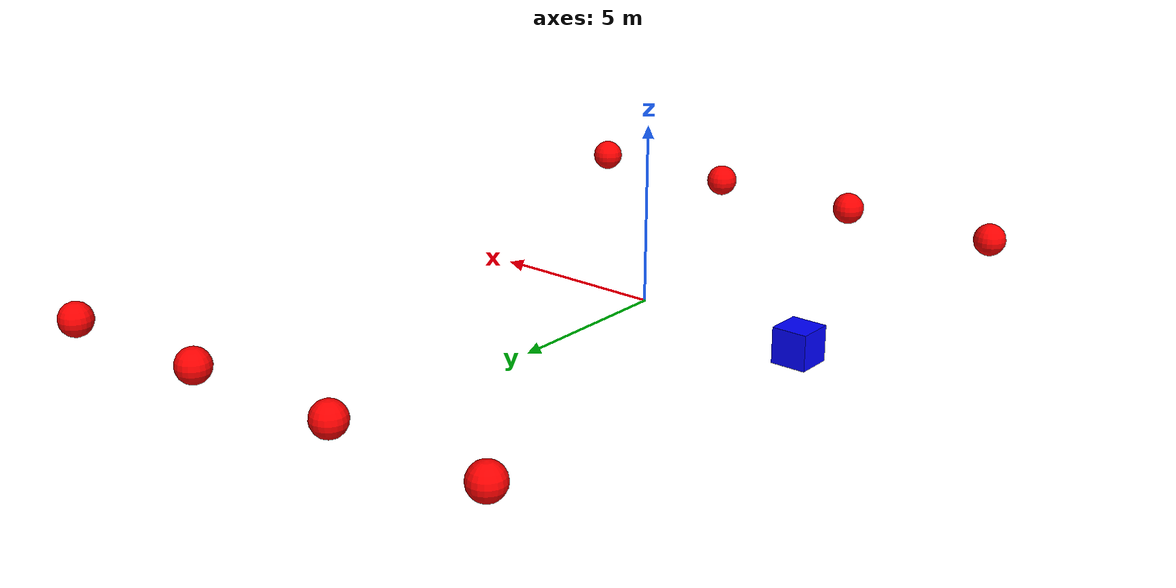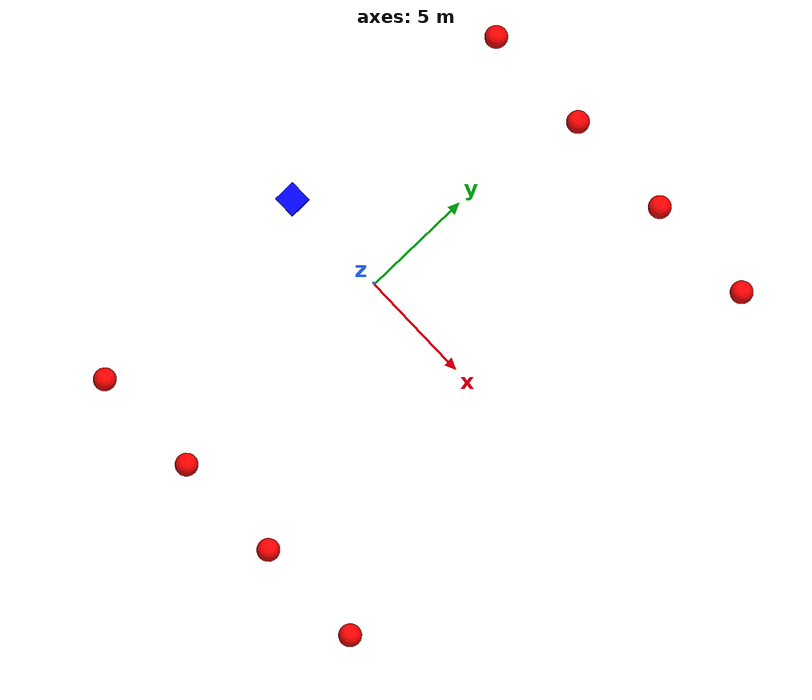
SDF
<?xml version="1.0" ?>
<sdf version="1.8">

    <!--
    To run the gazebo sim from the bridge
    gz sim -v 4 -r src/avoa3d/sdf/single_static.sdf
    -->

    <world name="3d_world">

        <physics name="1ms" type="ode">
            <max_step_size>0.001</max_step_size>
            <real_time_factor>1.0</real_time_factor>
            <real_time_update_rate>1000.0</real_time_update_rate>
        </physics>
        <gravity>0 0 0</gravity> <!--!AAAAAAAAAAA -->

        <plugin
            filename="gz-sim-physics-system"
            name="gz::sim::v8::systems::Physics">
        </plugin>
        <plugin
            filename="libignition-gazebo-user-commands-system.so"
            name="ignition::gazebo::systems::UserCommands">
        </plugin>
        <plugin
            filename="gz-sim-scene-broadcaster-system"
            name="gz::sim::systems::SceneBroadcaster">
        </plugin>

        <plugin
            filename="gz-sim-sensors-system"
            name="gz::sim::systems::Sensors">
            <render_engine>ogre2</render_engine>
        </plugin>

        <light type="directional" name="sun">
            <cast_shadows>true</cast_shadows>
            <pose>0 0 10 0 0 0</pose>
            <diffuse>0.8 0.8 0.8 1</diffuse>
            <specular>0.2 0.2 0.2 1</specular>
            <attenuation>
                <range>1000</range>
                <constant>0.9</constant>
                <linear>0.01</linear>
                <quadratic>0.001</quadratic>
            </attenuation>
            <direction>-0.5 0.1 -0.9</direction>
        </light>

        <!--!AGENTE -->
        <model name='agente' canonical_link='chassis'>
            <pose relative_to='world'>-5.0 0 0.0 0 0 0</pose> <!-- Changed z-position to 0.0 -->
            <link name='chassis'>
                <pose relative_to='__model__'>0.0 0 0.0 0 0 0</pose> <!-- Fixed to centered position -->
                <inertial> <!--inertial properties of the link mass, inertia matix-->
                    <mass>1.14395</mass>
                    <inertia>
                        <ixx>0.095329</ixx>
                        <ixy>0</ixy>
                        <ixz>0</ixz>
                        <iyy>0.381317</iyy>
                        <iyz>0</iyz>
                        <izz>0.476646</izz>
                    </inertia>
                </inertial>
                <visual name='visual'>
                    <geometry>
                        <box>
                            <size>1.0 1.0 1.0</size> <!-- Changed height to 1.0 for cube chassis -->
                        </box>
                    </geometry>
                    <material>
                        <ambient>0.0 0.0 1.0 1</ambient>
                        <diffuse>0.0 0.0 1.0 1</diffuse>
                        <specular>0.0 0.0 1.0 1</specular>
                    </material>
                </visual>
                <collision name='collision'>
                    <geometry>
                        <box>
                            <size>1.0 1.0 1.0</size>
                        </box>
                    </geometry>
                </collision>
                <enable_gravity>false</enable_gravity>
            </link>
               <!-- Added LiDAR link -->
            <link name='lidar_link'>
                <pose relative_to='chassis'>0.0 0 0.0 0 0 0</pose>
                <inertial>
                    <mass>0.1</mass>
                    <inertia>
                        <ixx>0.000166667</ixx>
                        <iyy>0.000166667</iyy>
                        <izz>0.000166667</izz>
                    </inertia>
                </inertial>
                <collision name='collision'>
                    <geometry>
                        <cylinder>
                            <radius>0.05</radius>
                            <length>0.1</length>
                        </cylinder>
                    </geometry>
                </collision>
                <visual name='visual'>
                    <geometry>
                        <cylinder>
                            <radius>0.05</radius>
                            <length>0.1</length>
                        </cylinder>
                    </geometry>
                    <material>
                        <ambient>0.0 1.0 0.0 1</ambient>
                        <diffuse>0.0 1.0 0.0 1</diffuse>
                        <specular>0.0 1.0 0.0 1</specular>
                    </material>
                </visual>
                <sensor name="lidar" type="gpu_lidar">
                    <topic>scan</topic>
                    <update_rate>10</update_rate>
                    <lidar>
                        <scan>
                            <horizontal>
                                <samples>5000</samples>
                                <resolution>1</resolution>
                                <min_angle>-3.14159</min_angle>
                                <max_angle>3.14159</max_angle>
                            </horizontal>
                        </scan>
                        <range>
                            <min>0.1</min>
                            <max>10.0</max>
                            <resolution>0.01</resolution>
                        </range>
                    </lidar>
                    <visualize>true</visualize>
                    <always_on>true</always_on>
                    <update_rate>10</update_rate>
                    <pose_frame>lidar</pose_frame>
                </sensor>
                <enable_gravity>false</enable_gravity>
            </link>

            <!-- Added joint to connect LiDAR to chassis -->
            <joint name="lidar_joint" type="fixed">
                <parent>chassis</parent>
                <child>lidar_link</child>
            </joint>

            <!-- plugin to publish-->
             <plugin
                filename="ignition-gazebo-joint-state-publisher-system"
                name="ignition::gazebo::systems::JointStatePublisher">
            </plugin>

            <plugin
                filename="ignition-gazebo-odometry-publisher-system"
                name="ignition::gazebo::systems::OdometryPublisher">
                <dimensions>3</dimensions>
            </plugin>

            <plugin
                filename="ignition-gazebo-velocity-control-system"
                name="ignition::gazebo::systems::VelocityControl">
                <initial_linear>0.0 0 0</initial_linear>
                <initial_angular>0 0 0.0</initial_angular>
            </plugin>

            <plugin
                filename="libignition-gazebo-pose-publisher-system.so"
                name="ignition::gazebo::systems::PosePublisher">
                <topic>/agente/pose</topic> <!-- Adjust the topic as needed -->
                <frame_id>agente</frame_id>  <!-- The frame you want to publish -->
                <update_rate>30</update_rate> <!-- Rate at which to publish the pose -->
            </plugin>

        </model>

        <!-- RIGHT SIDE OBSTACLES (moving downward) -->
        <!-- Existing obstacle -->
        <model name='obstacle_1' canonical_link='obstacle_1'>
            <static>false</static>
            <pose relative_to='world'>6 11 0 0 0 0</pose>
            <link name='obstacle_1'>
                <pose relative_to='__model__'>0.0 0 0.0 0 0 0</pose>
                <visual name='visual'>
                    <geometry>
                        <sphere>
                            <radius>0.5</radius>
                        </sphere>
                    </geometry>
                    <material>
                        <ambient>1.0 0.0 0.0 1</ambient>
                        <diffuse>1.0 0.0 0.0 1</diffuse>
                        <specular>1.0 0.0 0.0 1</specular>
                    </material>
                </visual>
                <collision name='collision'>
                    <geometry>
                        <sphere>
                            <radius>0.5</radius>
                        </sphere>
                    </geometry>
                </collision>
            </link>
            <plugin
                filename="ignition-gazebo-velocity-control-system"
                name="ignition::gazebo::systems::VelocityControl">
                <initial_linear>0.0 -1.0 0.0</initial_linear>
                <initial_angular>0 0 0.0</initial_angular>
            </plugin>
            <plugin
                filename="ignition-gazebo-odometry-publisher-system"
                name="ignition::gazebo::systems::OdometryPublisher">
                <dimensions>3</dimensions>
            </plugin>
        </model>

        <!-- Additional obstacles on right side -->
        <model name='obstacle_2' canonical_link='obstacle_2'>
            <static>false</static>
            <pose relative_to='world'>1 11 0 0 0 0</pose>
            <link name='obstacle_2'>
                <pose relative_to='__model__'>0.0 0 0.0 0 0 0</pose>
                <visual name='visual'>
                    <geometry>
                        <sphere>
                            <radius>0.5</radius>
                        </sphere>
                    </geometry>
                    <material>
                        <ambient>1.0 0.0 0.0 1</ambient>
                        <diffuse>1.0 0.0 0.0 1</diffuse>
                        <specular>1.0 0.0 0.0 1</specular>
                    </material>
                </visual>
                <collision name='collision'>
                    <geometry>
                        <sphere>
                            <radius>0.5</radius>
                        </sphere>
                    </geometry>
                </collision>
            </link>
            <plugin
                filename="ignition-gazebo-velocity-control-system"
                name="ignition::gazebo::systems::VelocityControl">
                <initial_linear>0.0 -1.0 0.0</initial_linear>
                <initial_angular>0 0 0.0</initial_angular>
            </plugin>
            <plugin
                filename="ignition-gazebo-odometry-publisher-system"
                name="ignition::gazebo::systems::OdometryPublisher">
                <dimensions>3</dimensions>
            </plugin>
        </model>

        <model name='obstacle_3' canonical_link='obstacle_3'>
            <static>false</static>
            <pose relative_to='world'>-4 11 0 0 0 0</pose>
            <link name='obstacle_3'>
                <pose relative_to='__model__'>0.0 0 0.0 0 0 0</pose>
                <visual name='visual'>
                    <geometry>
                        <sphere>
                            <radius>0.5</radius>
                        </sphere>
                    </geometry>
                    <material>
                        <ambient>1.0 0.0 0.0 1</ambient>
                        <diffuse>1.0 0.0 0.0 1</diffuse>
                        <specular>1.0 0.0 0.0 1</specular>
                    </material>
                </visual>
                <collision name='collision'>
                    <geometry>
                        <sphere>
                            <radius>0.5</radius>
                        </sphere>
                    </geometry>
                </collision>
            </link>
            <plugin
                filename="ignition-gazebo-velocity-control-system"
                name="ignition::gazebo::systems::VelocityControl">
                <initial_linear>0.0 -1.0 0.0</initial_linear>
                <initial_angular>0 0 0.0</initial_angular>
            </plugin>
            <plugin
                filename="ignition-gazebo-odometry-publisher-system"
                name="ignition::gazebo::systems::OdometryPublisher">
                <dimensions>3</dimensions>
            </plugin>
        </model>

        <model name='obstacle_4' canonical_link='obstacle_4'>
            <static>false</static>
            <pose relative_to='world'>11 11 0 0 0 0</pose>
            <link name='obstacle_4'>
                <pose relative_to='__model__'>0.0 0 0.0 0 0 0</pose>
                <visual name='visual'>
                    <geometry>
                        <sphere>
                            <radius>0.5</radius>
                        </sphere>
                    </geometry>
                    <material>
                        <ambient>1.0 0.0 0.0 1</ambient>
                        <diffuse>1.0 0.0 0.0 1</diffuse>
                        <specular>1.0 0.0 0.0 1</specular>
                    </material>
                </visual>
                <collision name='collision'>
                    <geometry>
                        <sphere>
                            <radius>0.5</radius>
                        </sphere>
                    </geometry>
                </collision>
            </link>
            <plugin
                filename="ignition-gazebo-velocity-control-system"
                name="ignition::gazebo::systems::VelocityControl">
                <initial_linear>0.0 -1.0 0.0</initial_linear>
                <initial_angular>0 0 0.0</initial_angular>
            </plugin>
            <plugin
                filename="ignition-gazebo-odometry-publisher-system"
                name="ignition::gazebo::systems::OdometryPublisher">
                <dimensions>3</dimensions>
            </plugin>
        </model>

        <!-- LEFT SIDE OBSTACLES (moving upward) -->
        <model name='obstacle_5' canonical_link='obstacle_5'>
            <static>false</static>
            <pose relative_to='world'>5 -11 0 0 0 0</pose>
            <link name='obstacle_5'>
                <pose relative_to='__model__'>0.0 0 0.0 0 0 0</pose>
                <visual name='visual'>
                    <geometry>
                        <sphere>
                            <radius>0.5</radius>
                        </sphere>
                    </geometry>
                    <material>
                        <ambient>1.0 0.0 0.0 1</ambient>
                        <diffuse>1.0 0.0 0.0 1</diffuse>
                        <specular>1.0 0.0 0.0 1</specular>
                    </material>
                </visual>
                <collision name='collision'>
                    <geometry>
                        <sphere>
                            <radius>0.5</radius>
                        </sphere>
                    </geometry>
                </collision>
            </link>
            <plugin
                filename="ignition-gazebo-velocity-control-system"
                name="ignition::gazebo::systems::VelocityControl">
                <initial_linear>0.0 1.0 0.0</initial_linear>
                <initial_angular>0 0 0.0</initial_angular>
            </plugin>
            <plugin
                filename="ignition-gazebo-odometry-publisher-system"
                name="ignition::gazebo::systems::OdometryPublisher">
                <dimensions>3</dimensions>
            </plugin>
        </model>

        <model name='obstacle_6' canonical_link='obstacle_6'>
            <static>false</static>
            <pose relative_to='world'>0 -11 0 0 0 0</pose>
            <link name='obstacle_6'>
                <pose relative_to='__model__'>0.0 0 0.0 0 0 0</pose>
                <visual name='visual'>
                    <geometry>
                        <sphere>
                            <radius>0.5</radius>
                        </sphere>
                    </geometry>
                    <material>
                        <ambient>1.0 0.0 0.0 1</ambient>
                        <diffuse>1.0 0.0 0.0 1</diffuse>
                        <specular>1.0 0.0 0.0 1</specular>
                    </material>
                </visual>
                <collision name='collision'>
                    <geometry>
                        <sphere>
                            <radius>0.5</radius>
                        </sphere>
                    </geometry>
                </collision>
            </link>
            <plugin
                filename="ignition-gazebo-velocity-control-system"
                name="ignition::gazebo::systems::VelocityControl">
                <initial_linear>0.0 1.0 0.0</initial_linear>
                <initial_angular>0 0 0.0</initial_angular>
            </plugin>
            <plugin
                filename="ignition-gazebo-odometry-publisher-system"
                name="ignition::gazebo::systems::OdometryPublisher">
                <dimensions>3</dimensions>
            </plugin>
        </model>

        <model name='obstacle_7' canonical_link='obstacle_7'>
            <static>false</static>
            <pose relative_to='world'>-5 -11 0 0 0 0</pose>
            <link name='obstacle_7'>
                <pose relative_to='__model__'>0.0 0 0.0 0 0 0</pose>
                <visual name='visual'>
                    <geometry>
                        <sphere>
                            <radius>0.5</radius>
                        </sphere>
                    </geometry>
                    <material>
                        <ambient>1.0 0.0 0.0 1</ambient>
                        <diffuse>1.0 0.0 0.0 1</diffuse>
                        <specular>1.0 0.0 0.0 1</specular>
                    </material>
                </visual>
                <collision name='collision'>
                    <geometry>
                        <sphere>
                            <radius>0.5</radius>
                        </sphere>
                    </geometry>
                </collision>
            </link>
            <plugin
                filename="ignition-gazebo-velocity-control-system"
                name="ignition::gazebo::systems::VelocityControl">
                <initial_linear>0.0 1.0 0.0</initial_linear>
                <initial_angular>0 0 0.0</initial_angular>
            </plugin>
            <plugin
                filename="ignition-gazebo-odometry-publisher-system"
                name="ignition::gazebo::systems::OdometryPublisher">
                <dimensions>3</dimensions>
            </plugin>
        </model>

        <model name='obstacle_8' canonical_link='obstacle_8'>
            <static>false</static>
            <pose relative_to='world'>10 -11 0 0 0 0</pose>
            <link name='obstacle_8'>
                <pose relative_to='__model__'>0.0 0 0.0 0 0 0</pose>
                <visual name='visual'>
                    <geometry>
                        <sphere>
                            <radius>0.5</radius>
                        </sphere>
                    </geometry>
                    <material>
                        <ambient>1.0 0.0 0.0 1</ambient>
                        <diffuse>1.0 0.0 0.0 1</diffuse>
                        <specular>1.0 0.0 0.0 1</specular>
                    </material>
                </visual>
                <collision name='collision'>
                    <geometry>
                        <sphere>
                            <radius>0.5</radius>
                        </sphere>
                    </geometry>
                </collision>
            </link>
            <plugin
                filename="ignition-gazebo-velocity-control-system"
                name="ignition::gazebo::systems::VelocityControl">
                <initial_linear>0.0 1.0 0.0</initial_linear>
                <initial_angular>0 0 0.0</initial_angular>
            </plugin>
            <plugin
                filename="ignition-gazebo-odometry-publisher-system"
                name="ignition::gazebo::systems::OdometryPublisher">
                <dimensions>3</dimensions>
            </plugin>
        </model>

    </world>
</sdf>
